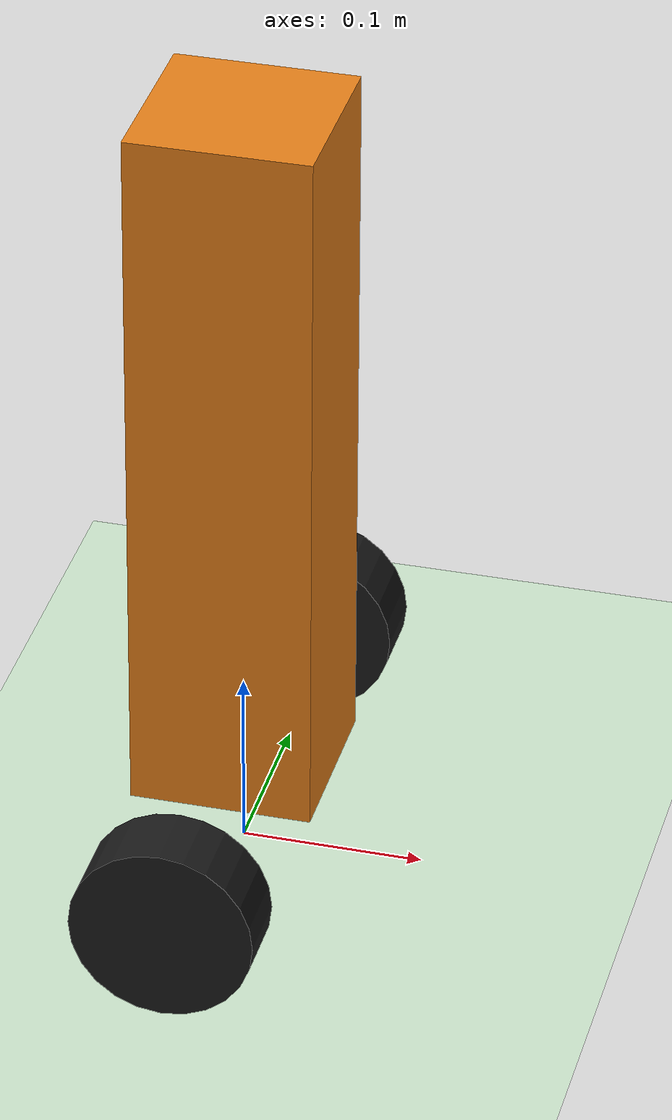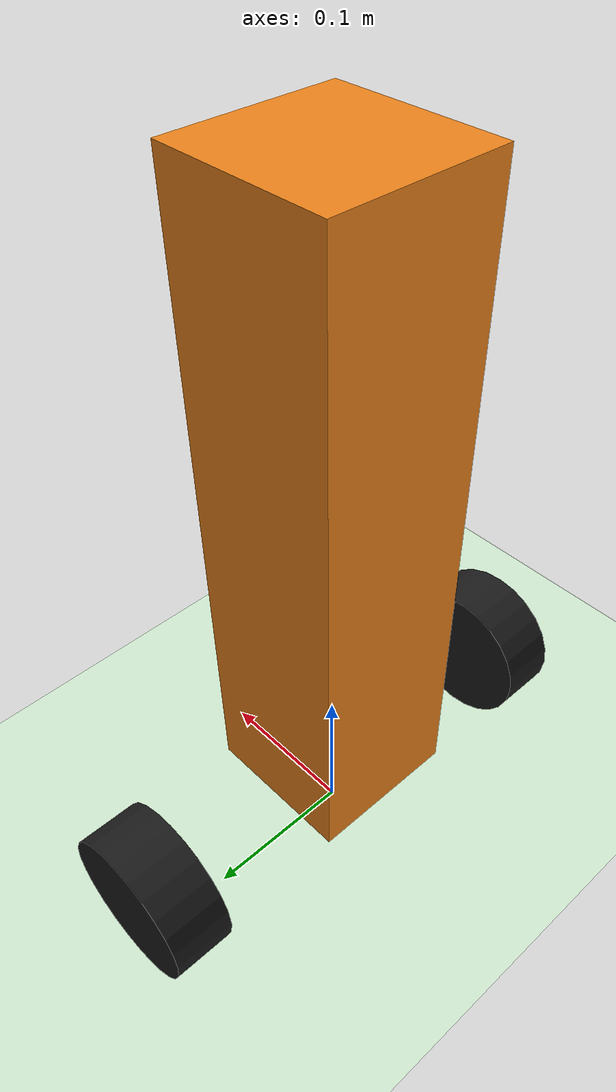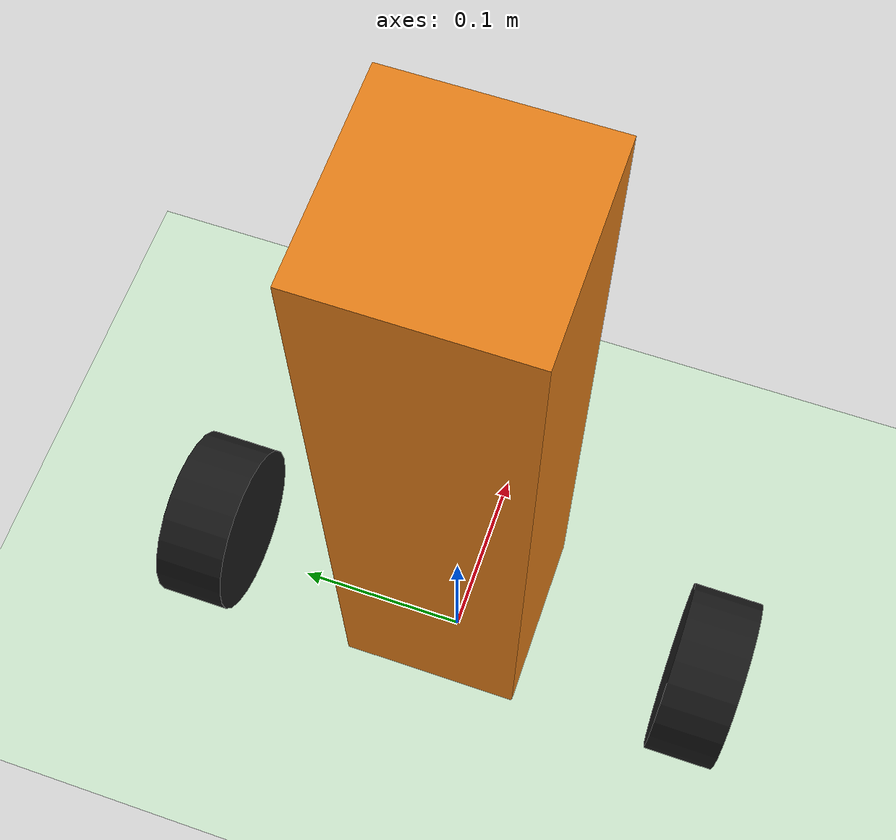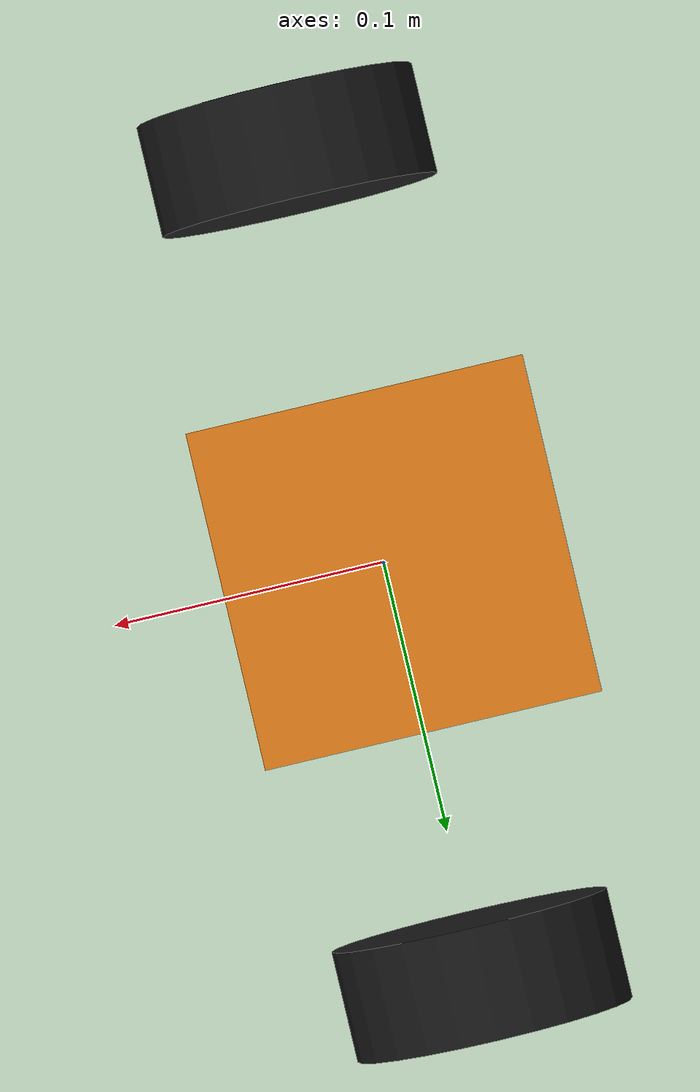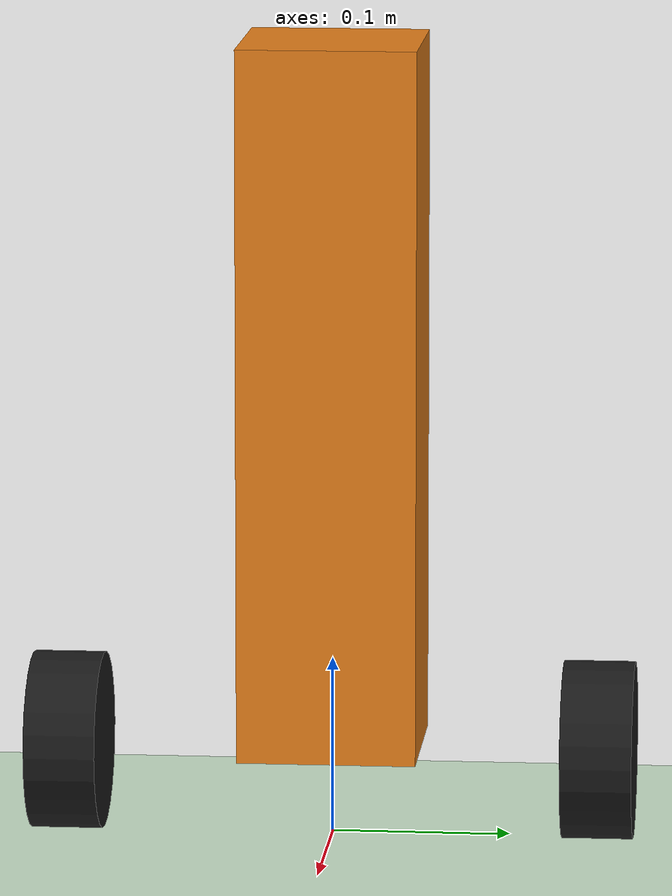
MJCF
<mujoco model="balance_bot">
  <compiler angle="radian" inertiafromgeom="true"/>

  <option timestep="0.001" gravity="0 0 -9.81">
    <flag contact="enable" warmstart="enable"/>
  </option>

  <visual>
    <rgba haze="0.15 0.25 0.35 1"/>
    <quality shadowsize="2048"/>
    <global fovy="50"/>
  </visual>

  <!-- Default tracking camera for viewer mode -->
  <statistic center="0 0 0.3" extent="3"/>

  <default>
    <geom contype="1" conaffinity="1" condim="3" friction="1.5 0.1 0.1"/>
    <motor ctrlrange="-1 1"/>
  </default>

  <worldbody>
    <light pos="0 0 3" dir="0 0 -1" directional="true"/>

    <!-- Floor with high friction for no-slip rolling -->
    <geom name="floor" type="plane" size="0 0 0.05" rgba=".8 .9 .8 1"/>

    <!-- Robot with freejoint (position emerges from wheel rolling) -->
    <body name="robot" pos="0 0 0.25" euler="0 0 0">
      <freejoint name="robot_free"/>

      <camera name="chase" mode="fixed" pos="-0.8 0 0.4" xyaxes="0 -1 0 0 0 1"/>
      <camera name="tracking_cam" mode="track" target="robot" pos="-1.5 0 1" xyaxes="0 -1 0 0 0 1"/>

      <!-- Main body: box 0.1x0.1x0.4m at COM height 0.2m above axle -->
      <geom name="body_box" type="box" size="0.05 0.05 0.2" pos="0 0 0"
            rgba="0.9 0.5 0.1 1" mass="1.5" contype="0" conaffinity="0"/>

      <!-- Right wheel at axle level, offset -0.15m in y -->
      <body name="wheel_r" pos="0 -0.15 -0.2">
        <joint name="motor_r" type="hinge" axis="0 1 0" damping="0.001"/>
        <geom name="wheel_r_geom" type="cylinder" size="0.05 0.02"
              rgba="0.1 0.1 0.1 1" mass="0.5"
              euler="1.5708 0 0"/>
      </body>

      <!-- Left wheel at axle level, offset +0.15m in y -->
      <body name="wheel_l" pos="0 0.15 -0.2">
        <joint name="motor_l" type="hinge" axis="0 1 0" damping="0.001"/>
        <geom name="wheel_l_geom" type="cylinder" size="0.05 0.02"
              rgba="0.1 0.1 0.1 1" mass="0.5"
              euler="1.5708 0 0"/>
      </body>
    </body>
  </worldbody>

  <actuator>
    <!-- Direct torque control on wheel joints -->
    <motor name="left" joint="motor_l" gear="1.0"/>
    <motor name="right" joint="motor_r" gear="1.0"/>
  </actuator>
</mujoco>
